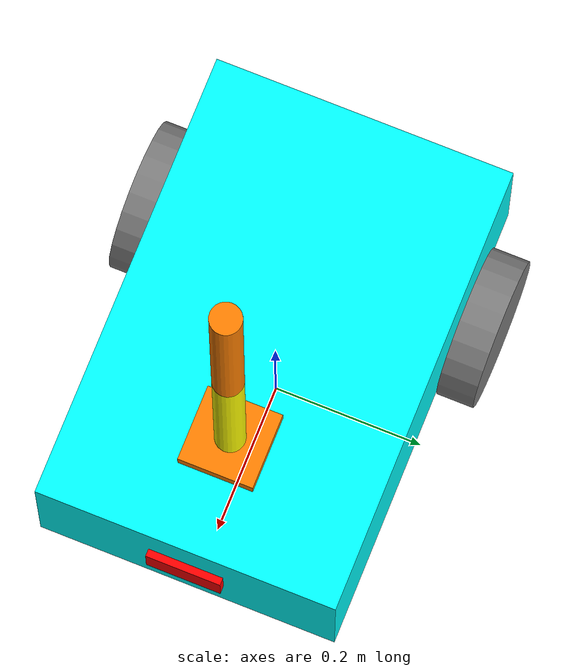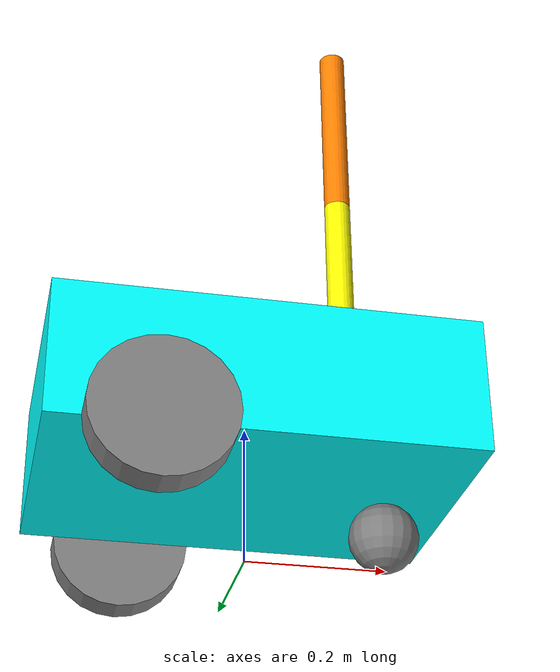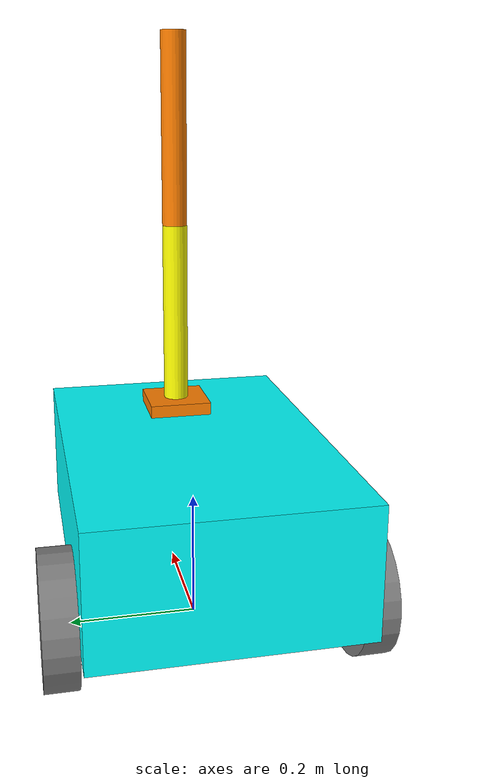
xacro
<?xml version="1.0"?>
<robot name="my_robot" xmlns:xacro="http://www.ros.org/wiki/xacro">

    <xacro:include filename="common_properties.xacro" />
    <xacro:include filename="mobile_base.xacro" />
    <xacro:include filename="mobile_base_gazebo.xacro" />
    <xacro:include filename="camera.xacro" />
    <xacro:include filename="robot_arm.xacro" />
    <xacro:include filename="robot_arm_gazebo.xacro" />

    <joint name="base_to_arm_base_joint" type="fixed">
        <parent link="base_link" />
        <child link="arm_base_footprint" />
        <origin xyz="${base_length / 4.0} 0 ${base_height}" rpy="0 0 0" />
    </joint>

</robot>

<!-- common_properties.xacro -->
<robot xmlns:xacro="http://www.ros.org/wiki/xacro">

    <material name="turquoise">
        <color rgba= "0 1 1 1" />
    </material>

    <material name="grey">
        <color rgba= "0.5 0.5 0.5 1" />
    </material>

    <material name="red">
        <color rgba= "1 0 0 1" />
    </material>

    <material name="orange">
        <color rgba="1 0.5 0 1" />
    </material>

    <material name="yellow">
        <color rgba="1 1 0 1" />
    </material>

    <xacro:macro name="box_inertia" params="m  x y z  o_xyz o_rpy">
        <inertial>
            <origin xyz="${o_xyz}" rpy="${o_rpy}"/>
            <mass value="${m}"/>
            <inertia ixx="${(m/12) * (y*y + z*z)}" ixy="0" ixz="0"
                     iyy="${(m/12) * (x*x + z*z)}" iyz="0"
                     izz="${(m/12) * (x*x + y*y)}"/>
        </inertial>
    </xacro:macro>

    <xacro:macro name="cylinder_inertia" params="m  r l  o_xyz o_rpy">
        <inertial>
            <origin xyz="${o_xyz}" rpy="${o_rpy}"/>
            <mass value="${m}"/>
            <inertia ixx="${(m/12) * (3*r*r + l*l)}" ixy="0" ixz="0"
                     iyy="${(m/12) * (3*r*r + l*l)}" iyz="0"
                     izz="${(m/2) * r*r}"/>
        </inertial>
    </xacro:macro>

    <xacro:macro name="sphere_inertia" params="m  r  o_xyz o_rpy">
        <inertial>
            <origin xyz="${o_xyz}" rpy="${o_rpy}"/>
            <mass value="${m}"/>
            <inertia ixx="${(2/5) * m * r*r}" ixy="0" ixz="0"
                     iyy="${(2/5) * m * r*r}" iyz="0"
                     izz="${(2/5) * m * r*r}"/>
        </inertial>
    </xacro:macro>
</robot>

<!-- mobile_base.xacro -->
<robot xmlns:xacro="http://www.ros.org/wiki/xacro">

    <xacro:property name="base_length" value="0.6" />
    <xacro:property name="base_width" value="0.4" />
    <xacro:property name="base_height" value="0.2" />
    <xacro:property name="wheel_radius" value="0.1" />
    <xacro:property name="wheel_length" value="0.05" />

    <link name="base_footprint" />

    <link name="base_link">
        <visual>
            <geometry>
                <box size="${base_length} ${base_width} ${base_height}" />
            </geometry>
            <origin xyz="0 0 ${base_height / 2.0}" rpy="0 0 0" />
            <material name="turquoise" />
        </visual>
        <collision>
            <geometry>
                <box size="${base_length} ${base_width} ${base_height}" />
            </geometry>
            <origin xyz="0 0 ${base_height / 2.0}" rpy="0 0 0" />
        </collision>
        <xacro:box_inertia m="5.0" x="${base_length}" y="${base_width}" z="${base_height}"
                           o_xyz="0 0 ${base_height / 2.0}" o_rpy="0 0 0" />
    </link>

    <xacro:macro name="wheel_link" params="prefix">
        <link name="${prefix}_wheel_link">
            <visual>
                <geometry>
                    <cylinder radius="${wheel_radius}" length="${wheel_length}" />
                </geometry>
                <origin xyz="0 0 0" rpy="${pi / 2.0} 0 0" />
                <material name="grey" />
            </visual>
            <collision>
                <geometry>
                    <sphere radius="${wheel_radius}" />
                </geometry>
                <origin xyz="0 0 0" rpy="0 0 0" />
            </collision>
            <xacro:cylinder_inertia m="1.0" r="${wheel_radius}" l="${wheel_length}"
                                    o_xyz="0 0 0" o_rpy="${pi / 2.0} 0 0" />
        </link>
    </xacro:macro>

    <xacro:wheel_link prefix="right" />
    <xacro:wheel_link prefix="left" />

    <link name="caster_wheel_link">
        <visual>
            <geometry>
                <sphere radius="${wheel_radius / 2.0}" />
            </geometry>
            <origin xyz="0 0 0" rpy="0 0 0" />
            <material name="grey" />
        </visual>
        <collision>
            <geometry>
                <sphere radius="${wheel_radius / 2.0}" />
            </geometry>
            <origin xyz="0 0 0" rpy="0 0 0" />
        </collision>
        <xacro:sphere_inertia m="0.5" r="${wheel_radius / 2.0}"
                              o_xyz="0 0 0" o_rpy="0 0 0" />
    </link>

    <joint name="base_joint" type="fixed">
        <parent link="base_footprint" />
        <child link="base_link" />
        <origin xyz="0 0 ${wheel_radius}" rpy="0 0 0"/>
    </joint>

    <joint name="base_link_to_right_wheel_link" type="continuous">
        <parent link="base_link" />
        <child link="right_wheel_link" />
        <origin xyz="${-base_length / 4.0} ${-(base_width + wheel_length) / 2.0} 0" rpy="0 0 0" />
        <axis xyz="0 1 0" />
    </joint>

    <joint name="base_link_to_left_wheel_link" type="continuous">
        <parent link="base_link" />
        <child link="left_wheel_link" />
        <origin xyz="${-base_length / 4.0} ${(base_width + wheel_length) / 2.0} 0" rpy="0 0 0" />
        <axis xyz="0 1 0" />
    </joint>

    <joint name="base_link_to_caster_wheel_link" type="fixed">
        <parent link="base_link" />
        <child link="caster_wheel_link" />
        <origin xyz="${base_length / 3.0} 0 ${-wheel_radius / 2.0}" rpy="0 0 0" />
    </joint>

</robot>

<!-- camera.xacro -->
<robot xmlns:xacro="http://www.ros.org/wiki/xacro">

    <xacro:property name="camera_length" value="0.01" />
    <xacro:property name="camera_width" value="0.1" />
    <xacro:property name="camera_height" value="0.05" />

    <link name="camera_link">
        <visual>
            <geometry>
                <box size="${camera_length} ${camera_width} ${camera_height}" />
            </geometry>
            <origin xyz="0 0 0" rpy="0 0 0" />
            <material name="red" />
        </visual>
        <collision>
            <geometry>
                <box size="${camera_length} ${camera_width} ${camera_height}" />
            </geometry>
            <origin xyz="0 0 0" rpy="0 0 0" />
        </collision>
        <xacro:box_inertia m="0.5" x="${camera_length}" y="${camera_width}" z="${camera_height}"
                           o_xyz="0 0 0" o_rpy="0 0 0" />
    </link>

    <!-- FOR Open CV compatibility, we need to define an optical frame for the camera sensor -->
    <link name="camera_link_optical" />

    <joint name="camera_optical_joint" type="fixed">
        <!-- these values have to be these values otherwise the gazebo camera
            image won't be aligned properly with the frame it is supposedly
            originating from -->
        <origin xyz="0 0 0" rpy="${-pi/2} 0 ${-pi/2}"/>
        <parent link="camera_link"/>
        <child link="camera_link_optical"/>
    </joint>

    <joint name="camera_joint" type="fixed">
        <parent link="base_link" />
        <child link="camera_link" />
        <origin xyz="${(base_length / 2.0) + (camera_length / 2.0)} 0 ${base_height / 2.0}" rpy="0 0 0" />
    </joint>

    <gazebo reference="camera_link">
        <sensor type="camera" name="camera_sensor">
            <always_on>true</always_on>
            <visualize>true</visualize>
            <update_rate>30.0</update_rate>
            <topic>/camera/image_raw</topic>
            <frame_id>camera_link_optical</frame_id>

            <camera>
                <horizontal_fov>1.047</horizontal_fov>
                <image>
                    <width>640</width>
                    <height>480</height>
                    <format>R8G8B8</format>
                </image>
                <clip>
                    <near>0.1</near>
                    <far>100</far>
                </clip>
            </camera>
        </sensor>
    </gazebo>

    <gazebo>
        <plugin filename="gz-sim-sensors-system"
            name="gz::sim::systems::Sensors">
            <render_engine>ogre2</render_engine>
        </plugin>
    </gazebo>

</robot>

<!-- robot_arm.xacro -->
<robot xmlns:xacro="http://www.ros.org/wiki/xacro">

    <xacro:property name="arm_base_link_length" value="0.1" />
    <xacro:property name="arm_base_link_width" value="0.1" />
    <xacro:property name="arm_base_link_height" value="0.02" />
    <xacro:property name="arm_base_link_mass" value="0.5" />

    <xacro:property name="forearm_link_radius" value="0.02" />
    <xacro:property name="forearm_link_length" value="0.3" />
    <xacro:property name="forearm_link_mass" value="0.3" />

    <xacro:property name="hand_link_radius" value="0.02" />
    <xacro:property name="hand_link_length" value="0.3" />
    <xacro:property name="hand_link_mass" value="0.3" />

    <link name="arm_base_footprint" />

    <link name="arm_base_link">
        <visual>
            <geometry>
                <box size="${arm_base_link_length} ${arm_base_link_width} ${arm_base_link_height}" />
            </geometry>
            <origin xyz="0 0 ${arm_base_link_height / 2.0}" rpy="0 0 0" />
            <material name="orange" />
        </visual>
        <collision>
            <geometry>
                <box size="${arm_base_link_length} ${arm_base_link_width} ${arm_base_link_height}" />
            </geometry>
            <origin xyz="0 0 ${arm_base_link_height / 2.0}" rpy="0 0 0" />
        </collision>
        <xacro:box_inertia m="${arm_base_link_mass}" x="${arm_base_link_length}" y="${arm_base_link_width}" z="${arm_base_link_height}"
                           o_xyz="0 0 ${arm_base_link_height / 2.0}" o_rpy="0 0 0" />
    </link>

    <link name="forearm_link">
        <visual>
            <geometry>
                <cylinder radius="${forearm_link_radius}" length="${forearm_link_length}" />
            </geometry>
            <origin xyz="0 0 ${forearm_link_length / 2.0}" rpy="0 0 0" />
            <material name="yellow" />
        </visual>
        <collision>
            <geometry>
                <cylinder radius="${forearm_link_radius}" length="${forearm_link_length}" />
            </geometry>
            <origin xyz="0 0 ${forearm_link_length / 2.0}" rpy="0 0 0" />
        </collision>
        <xacro:cylinder_inertia m="${forearm_link_mass}" r="${forearm_link_radius}" l="${forearm_link_length}"
                                o_xyz="0 0 ${forearm_link_length / 2.0}" o_rpy="0 0 0" />
    </link>

    <link name="hand_link">
        <visual>
            <geometry>
                <cylinder radius="${hand_link_radius}" length="${hand_link_length}" />
            </geometry>
            <origin xyz="0 0 ${hand_link_length / 2.0}" rpy="0 0 0" />
            <material name="orange" />
        </visual>
        <collision>
            <geometry>
                <cylinder radius="${hand_link_radius}" length="${hand_link_length}" />
            </geometry>
            <origin xyz="0 0 ${hand_link_length / 2.0}" rpy="0 0 0" />
        </collision>
        <xacro:cylinder_inertia m="${hand_link_mass}" r="${hand_link_radius}" l="${hand_link_length}"
                                o_xyz="0 0 ${hand_link_length / 2.0}" o_rpy="0 0 0" />
    </link>

    <joint name="arm_base_joint" type="fixed">
        <parent link="arm_base_footprint" />
        <child link="arm_base_link" />
        <origin xyz="0 0 0" rpy="0 0 0" />
    </joint>

    <joint name="forearm_joint" type="revolute">
        <parent link="arm_base_link" />
        <child link="forearm_link" />
        <origin xyz="0 0 ${arm_base_link_height / 2.0}" rpy="0 0 0" />
        <axis xyz="1 0 0" />
        <limit lower="0" upper="${pi/2}" effort="100" velocity="100" />
        <dynamics damping="0.3" friction="0.3" />
    </joint>

    <joint name="hand_joint" type="revolute">
        <parent link="forearm_link" />
        <child link="hand_link" />
        <origin xyz="0 0 ${hand_link_length / 2.0 + forearm_link_length / 2.0}" rpy="0 0 0" />
        <axis xyz="1 0 0" />
        <limit lower="0" upper="${pi/2}" effort="100" velocity="100" />
        <dynamics damping="0.3" friction="0.3" />
    </joint>

    <!-- ================= ROS2 CONTROL ================= -->

    <ros2_control name="arm_system" type="system">
        <hardware>
            <plugin>gz_ros2_control/GazeboSystem</plugin>
        </hardware>

        <!-- Forearm Joint -->
        <joint name="forearm_joint">
            <command_interface name="position"/>
            <state_interface name="position"/>
            <state_interface name="velocity"/>
        </joint>

        <!-- Hand Joint -->
        <joint name="hand_joint">
            <command_interface name="position"/>
            <state_interface name="position"/>
            <state_interface name="velocity"/>
        </joint>

    </ros2_control>

</robot>
